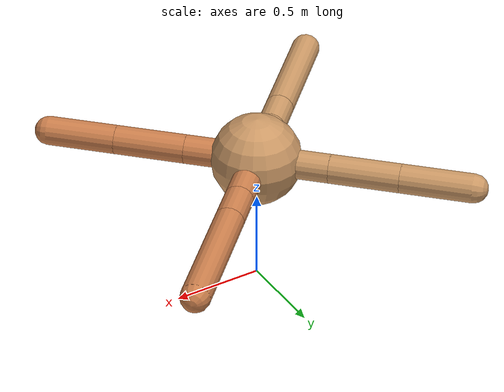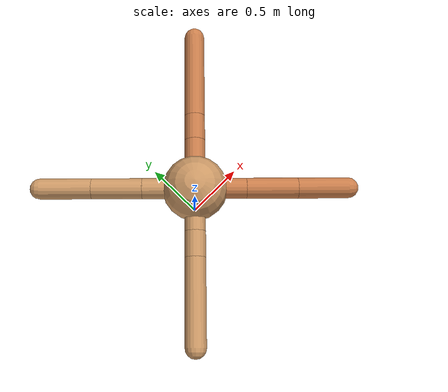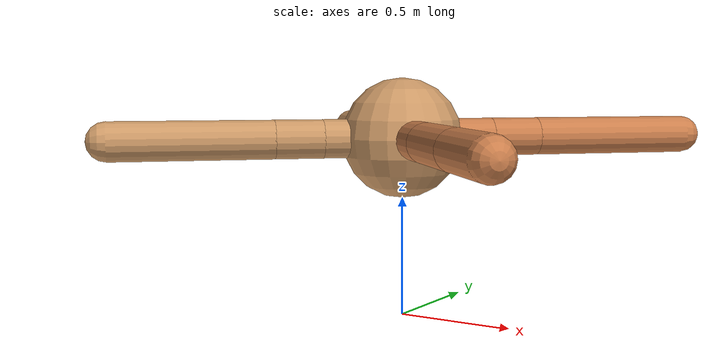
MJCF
<mujoco model="ant">
  <compiler angle="degree" coordinate="local" inertiafromgeom="true" />
  <option integrator="RK4" timestep="0.01" />
  <custom>
    <numeric data="0.0 0.0 0.55 1.0 0.0 0.0 0.0 0.0 1.0 0.0 -1.0 0.0 -1.0 0.0 1.0" name="init_qpos" />
  </custom>
  <default>
    <joint armature="1" damping="1" limited="true" />
    <geom conaffinity="0" condim="3" density="5.0" friction="1.5 0.1 0.1" margin="0.01" rgba="0.8 0.6 0.4 1" />
  </default>
  <worldbody>
    <body name="torso" pos="0 0 0.75">
      <geom name="torso_geom" pos="0 0 0" size="0.25" type="sphere" />

      <body name="front_left_leg" pos="0 0 0">
        <geom fromto="0.0 0.0 0.0 0.2740187439020804 0.2740187439020804 0.0" name="aux_1_geom" size="0.08" type="capsule" rgba=".8 .5 .3 1" />
        <body name="aux_1" pos="0.2740187439020804 0.2740187439020804 0.0">
          <joint axis="0 0 1" name="hip_1" pos="0.0 0.0 0.0" range="-40 40" type="hinge" />
          <geom fromto="0.0 0.0 0.0 0.14412343167695615 0.14412343167695615 0.0" name="left_leg_geom" size="0.08" type="capsule" rgba=".8 .5 .3 1" />
          <body pos="0.14412343167695615 0.14412343167695615 0.0" name="front_left_foot">
            <joint axis="-1 1 0" name="ankle_1" pos="0.0 0.0 0.0" range="30 100" type="hinge" />
            <geom fromto="0.0 0.0 0.0 0.48422588610632344 0.48422588610632344 0.0" name="left_ankle_geom" size="0.08" type="capsule" rgba=".8 .5 .3 1" />
          </body>
        </body>
      </body>
      <body name="front_right_leg" pos="0 0 0">
        <geom fromto="0.0 0.0 0.0 -0.28640361494882155 0.28640361494882155 0.0" name="aux_2_geom" size="0.08" type="capsule" />
        <body name="aux_2" pos="-0.28640361494882155 0.28640361494882155 0.0">
          <joint axis="0 0 1" name="hip_2" pos="0.0 0.0 0.0" range="-40 40" type="hinge" />
          <geom fromto="0.0 0.0 0.0 -0.2725503644361586 0.2725503644361586 0.0" name="right_leg_geom" size="0.08" type="capsule" />
          <body pos="-0.2725503644361586 0.2725503644361586 0.0" name="front_right_foot">
            <joint axis="1 1 0" name="ankle_2" pos="0.0 0.0 0.0" range="-100 -30" type="hinge" />
            <geom fromto="0.0 0.0 0.0 -0.27816514740176096 0.27816514740176096 0.0" name="right_ankle_geom" size="0.08" type="capsule" />
          </body>
        </body>
      </body>
      <body name="left_back_leg" pos="0 0 0">
        <geom fromto="0.0 0.0 0.0 -0.2355459235508203 -0.2355459235508203 0.0" name="aux_3_geom" size="0.08" type="capsule" />
        <body name="aux_3" pos="-0.2355459235508203 -0.2355459235508203 0.0">
          <joint axis="0 0 1" name="hip_3" pos="0.0 0.0 0.0" range="-40 40" type="hinge" />
          <geom fromto="0.0 0.0 0.0 -0.1386946921129783 -0.1386946921129783 0.0" name="back_leg_geom" size="0.08" type="capsule" />
          <body pos="-0.1386946921129783 -0.1386946921129783 0.0" name="left_back_foot">
            <joint axis="-1 1 0" name="ankle_3" pos="0.0 0.0 0.0" range="-100 -30" type="hinge" />
            <geom fromto="0.0 0.0 0.0 -0.4602086307905662 -0.4602086307905662 0.0" name="third_ankle_geom" size="0.08" type="capsule" />
          </body>
        </body>
      </body>
      <body name="right_back_leg" pos="0 0 0">
        <geom fromto="0.0 0.0 0.0 0.2779398526543532 -0.2779398526543532 0.0" name="aux_4_geom" size="0.08" type="capsule" rgba=".8 .5 .3 1" />
        <body name="aux_4" pos="0.2779398526543532 -0.2779398526543532 0.0">
          <joint axis="0 0 1" name="hip_4" pos="0.0 0.0 0.0" range="-40 40" type="hinge" />
          <geom fromto="0.0 0.0 0.0 0.27721750416956115 -0.27721750416956115 0.0" name="rightback_leg_geom" size="0.08" type="capsule" rgba=".8 .5 .3 1" />
          <body pos="0.27721750416956115 -0.27721750416956115 0.0" name="right_back_foot">
            <joint axis="1 1 0" name="ankle_4" pos="0.0 0.0 0.0" range="30 100" type="hinge" />
            <geom fromto="0.0 0.0 0.0 0.27081352836512507 -0.27081352836512507 0.0" name="fourth_ankle_geom" size="0.08" type="capsule" rgba=".8 .5 .3 1" />
          </body>
        </body>
      </body>
    </body>
  </worldbody>
  <actuator>
    <motor ctrllimited="true" ctrlrange="-1.0 1.0" joint="hip_4" gear="150" />
    <motor ctrllimited="true" ctrlrange="-1.0 1.0" joint="ankle_4" gear="150" />
    <motor ctrllimited="true" ctrlrange="-1.0 1.0" joint="hip_1" gear="150" />
    <motor ctrllimited="true" ctrlrange="-1.0 1.0" joint="ankle_1" gear="150" />
    <motor ctrllimited="true" ctrlrange="-1.0 1.0" joint="hip_2" gear="150" />
    <motor ctrllimited="true" ctrlrange="-1.0 1.0" joint="ankle_2" gear="150" />
    <motor ctrllimited="true" ctrlrange="-1.0 1.0" joint="hip_3" gear="150" />
    <motor ctrllimited="true" ctrlrange="-1.0 1.0" joint="ankle_3" gear="150" />
  </actuator>
</mujoco>
